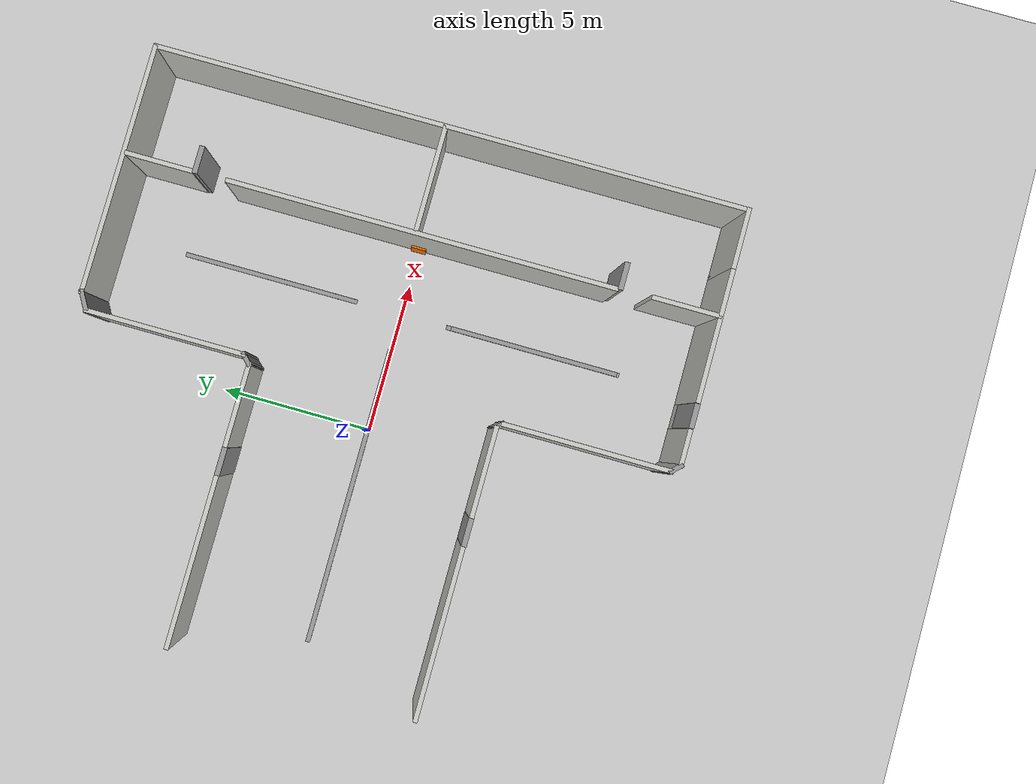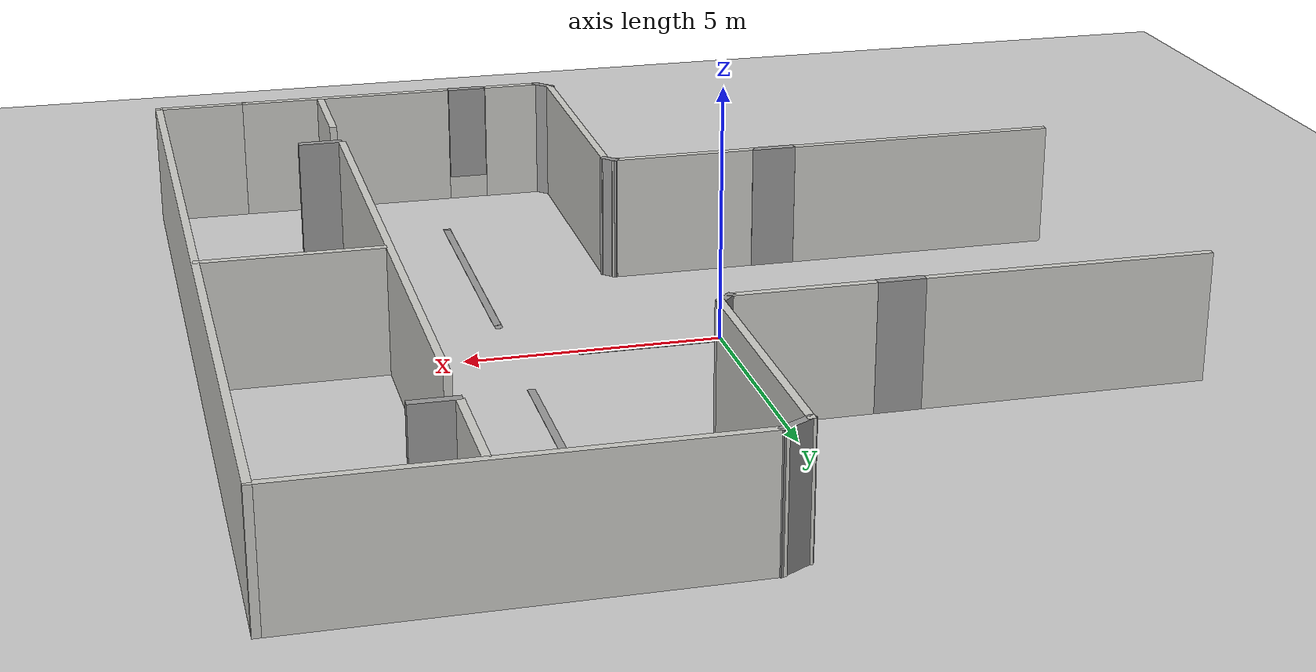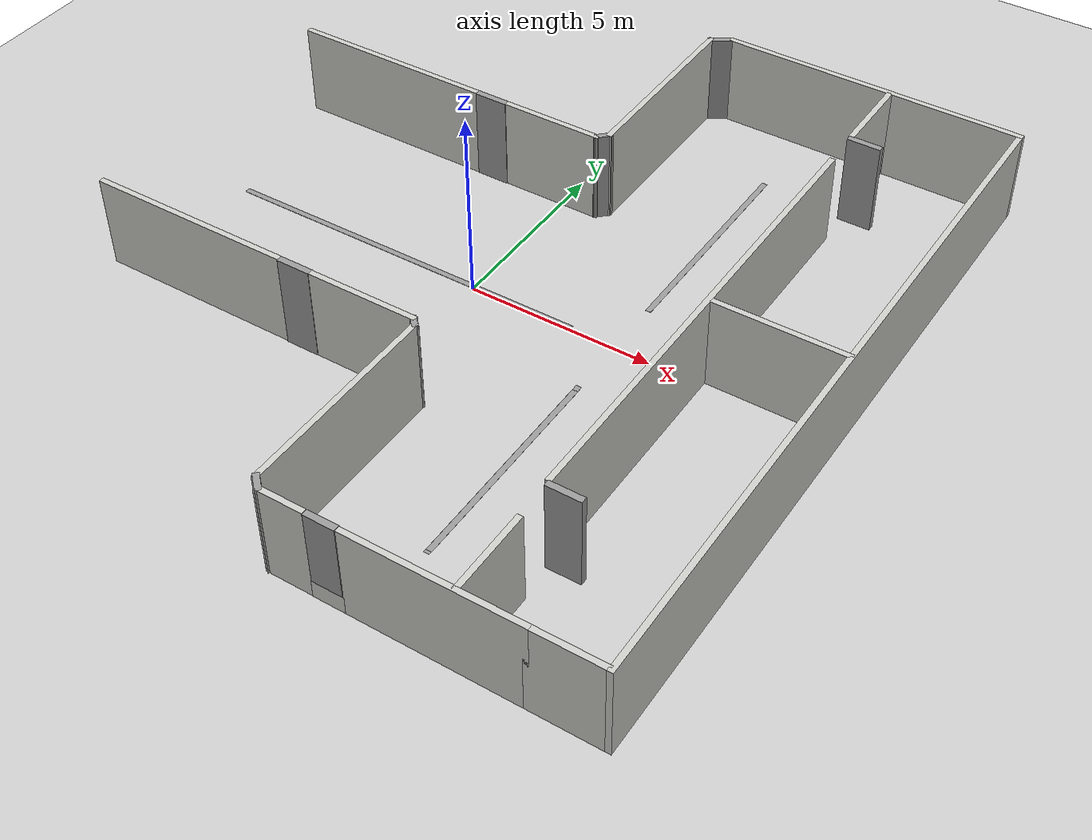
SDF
<sdf version="1.7">
 <world name="default">
  <light name="sun" type="directional">
   <pose>0 0 10 0 -0 0</pose>
   <diffuse>0.8 0.8 0.8 1</diffuse>
   <specular>0.2 0.2 0.2 1</specular>
   <attenuation>
    <range>1000</range>
    <constant>0.9</constant>
    <linear>0.01</linear>
    <quadratic>0.001</quadratic>
   </attenuation>
   <direction>-0.5 0.1 -0.9</direction>
   <spot><inner_angle>0</inner_angle><outer_angle>0</outer_angle><falloff>0</falloff></spot>
  </light>
  <model name="ground_plane">
   <static>1</static>
   <link name="link">
    <collision name="collision">
     <geometry><plane><normal>0 0 1</normal><size>100 100</size></plane></geometry>
     <surface><friction><ode><mu>100</mu><mu2>50</mu2></ode></friction></surface>
    </collision>
    <visual name="visual">
     <cast_shadows>0</cast_shadows>
     <geometry><plane><normal>0 0 1</normal><size>100 100</size></plane></geometry>
     <material>
      <script><uri>file://media/materials/scripts/gazebo.material</uri><name>Gazebo/Grey</name></script>
     </material>
    </visual>
   </link>
  </model>
  <gravity>0 0 -9.8</gravity>
  <magnetic_field>6e-06 2.3e-05 -4.2e-05</magnetic_field>
  <atmosphere type="adiabatic"/>
  <physics type="ode">
   <max_step_size>0.001</max_step_size>
   <real_time_factor>1</real_time_factor>
   <real_time_update_rate>1000</real_time_update_rate>
  </physics>
  <scene><ambient>0.4 0.4 0.4 1</ambient><background>0.7 0.7 0.7 1</background><shadows>1</shadows></scene>
  <spherical_coordinates>
   <surface_model>EARTH_WGS84</surface_model>
   <latitude_deg>0</latitude_deg>
   <longitude_deg>0</longitude_deg>
   <elevation>0</elevation>
   <heading_deg>0</heading_deg>
  </spherical_coordinates>
  <model name="hosp.world">
   <pose>0.907925 0.036457 0 0 -0 0</pose>
   <link name="Door_0">
    <collision name="Door_0_Collision">
     <geometry><box><size>0.9 0.17 2.5</size></box></geometry>
     <pose>0 0 1.25 0 -0 0</pose>
    </collision>
    <visual name="Door_0_Visual">
     <pose>0 0 1.25 0 -0 0</pose>
     <geometry><box><size>0.9 0.17 2.5</size></box></geometry>
     <material>
      <script><uri>file://media/materials/scripts/gazebo.material</uri><name>Gazebo/Grey</name></script>
     </material>
    </visual>
    <pose>-3.0738 -3.88285 0 0 -0 0</pose>
   </link>
   <link name="Door_1">
    <collision name="Door_1_Collision">
     <geometry><box><size>0.9 0.17 2.5</size></box></geometry>
     <pose>0 0 1.25 0 -0 0</pose>
    </collision>
    <visual name="Door_1_Visual">
     <pose>0 0 1.25 0 -0 0</pose>
     <geometry><box><size>0.9 0.17 2.5</size></box></geometry>
     <material>
      <script><uri>file://media/materials/scripts/gazebo.material</uri><name>Gazebo/Grey</name></script>
     </material>
    </visual>
    <pose>-3.03527 4.01633 0 0 -0 0</pose>
   </link>
   <link name="Door_2">
    <collision name="Door_2_Collision">
     <geometry><box><size>0.9 0.17 2.5</size></box></geometry>
     <pose>0 0 1.25 0 -0 0</pose>
    </collision>
    <visual name="Door_2_Visual">
     <pose>0 0 1.25 0 -0 0</pose>
     <geometry><box><size>0.9 0.17 2.5</size></box></geometry>
     <material>
      <script><uri>file://media/materials/scripts/gazebo.material</uri><name>Gazebo/Grey</name></script>
     </material>
    </visual>
    <pose>5.88274 -6.45803 0 0 -0 0</pose>
   </link>
   <link name="Door_3">
    <collision name="Door_3_Collision">
     <geometry><box><size>0.9 0.17 2.5</size></box></geometry>
     <pose>0 0 1.25 0 -0 0</pose>
    </collision>
    <visual name="Door_3_Visual">
     <pose>0 0 1.25 0 -0 0</pose>
     <geometry><box><size>0.9 0.17 2.5</size></box></geometry>
     <material>
      <script><uri>file://media/materials/scripts/gazebo.material</uri><name>Gazebo/Grey</name></script>
     </material>
    </visual>
    <pose>5.82192 7.34292 0 0 -0 0</pose>
   </link>
   <link name="Wall_0">
    <collision name="Wall_0_Collision">
     <geometry><box><size>5.5 0.15 2.5</size></box></geometry>
     <pose>0 0 1.25 0 -0 0</pose>
    </collision>
    <visual name="Wall_0_Visual">
     <pose>0 0 1.25 0 -0 0</pose>
     <geometry><box><size>5.5 0.15 2.5</size></box></geometry>
     <material>
      <script><uri>file://media/materials/scripts/gazebo.material</uri><name>Gazebo/CeilingTiled</name></script>
      <ambient>1 1 1 1</ambient>
     </material>
     <meta><layer>0</layer></meta>
    </visual>
    <pose>-6.27423 -3.87046 0 0 -0 0</pose>
   </link>
   <link name="Wall_11">
    <collision name="Wall_11_Collision">
     <geometry><box><size>5.5 0.15 2.5</size></box></geometry>
     <pose>0 0 1.25 0 -0 0</pose>
    </collision>
    <visual name="Wall_11_Visual">
     <pose>0 0 1.25 0 -0 0</pose>
     <geometry><box><size>5.5 0.15 2.5</size></box></geometry>
     <material>
      <script><uri>file://media/materials/scripts/gazebo.material</uri><name>Gazebo/CeilingTiled</name></script>
      <ambient>1 1 1 1</ambient>
     </material>
     <meta><layer>0</layer></meta>
    </visual>
    <pose>0.424387 -6.74646 0 0 -0 -1.5708</pose>
   </link>
   <link name="Wall_13">
    <collision name="Wall_13_Collision">
     <geometry><box><size>0.5 0.15 2.5</size></box></geometry>
     <pose>0 0 1.25 0 -0 0</pose>
    </collision>
    <visual name="Wall_13_Visual">
     <pose>0 0 1.25 0 -0 0</pose>
     <geometry><box><size>0.5 0.15 2.5</size></box></geometry>
     <material>
      <script><uri>file://media/materials/scripts/gazebo.material</uri><name>Gazebo/Grey</name></script>
      <ambient>1 1 1 1</ambient>
     </material>
     <meta><layer>0</layer></meta>
    </visual>
    <pose>0.548131 -9.54521 0 0 -0 -0.785398</pose>
   </link>
   <link name="Wall_14">
    <collision name="Wall_14_Collision">
     <geometry><box><size>1.25 0.15 2.5</size></box></geometry>
     <pose>0 0 1.25 0 -0 0</pose>
    </collision>
    <visual name="Wall_14_Visual">
     <pose>0 0 1.25 0 -0 0</pose>
     <geometry><box><size>1.25 0.15 2.5</size></box></geometry>
     <material>
      <script><uri>file://media/materials/scripts/gazebo.material</uri><name>Gazebo/CeilingTiled</name></script>
      <ambient>1 1 1 1</ambient>
     </material>
     <meta><layer>0</layer></meta>
    </visual>
    <pose>1.22188 -9.66895 0 0 -0 0</pose>
   </link>
   <link name="Wall_17">
    <collision name="Wall_17_Collision">
     <geometry><box><size>4.5 0.15 2.5</size></box></geometry>
     <pose>0 0 1.25 0 -0 0</pose>
    </collision>
    <visual name="Wall_17_Visual">
     <pose>0 0 1.25 0 -0 0</pose>
     <geometry><box><size>4.5 0.15 2.5</size></box></geometry>
     <material>
      <script><uri>file://media/materials/scripts/gazebo.material</uri><name>Gazebo/CeilingTiled</name></script>
      <ambient>1 1 1 1</ambient>
     </material>
     <meta><layer>0</layer></meta>
    </visual>
    <pose>4.92423 -9.67743 0 0 -0 0</pose>
   </link>
   <link name="Wall_18">
    <collision name="Wall_18_Collision">
     <geometry><box><size>2 0.15 2.5</size></box></geometry>
     <pose>0 0 1.25 0 -0 0</pose>
    </collision>
    <visual name="Wall_18_Visual">
     <pose>0 0 1.25 0 -0 0</pose>
     <geometry><box><size>2 0.15 2.5</size></box></geometry>
     <material>
      <script><uri>file://media/materials/scripts/gazebo.material</uri><name>Gazebo/CeilingTiled</name></script>
      <ambient>1 1 1 1</ambient>
     </material>
     <meta><layer>0</layer></meta>
    </visual>
    <pose>8.02423 -9.67743 0 0 -0 0</pose>
   </link>
   <link name="Wall_19">
    <collision name="Wall_19_Collision">
     <geometry><box><size>19.5 0.15 2.5</size></box></geometry>
     <pose>0 0 1.25 0 -0 0</pose>
    </collision>
    <visual name="Wall_19_Visual">
     <pose>0 0 1.25 0 -0 0</pose>
     <geometry><box><size>19.5 0.15 2.5</size></box></geometry>
     <material>
      <script><uri>file://media/materials/scripts/gazebo.material</uri><name>Gazebo/CeilingTiled</name></script>
      <ambient>1 1 1 1</ambient>
     </material>
     <meta><layer>0</layer></meta>
    </visual>
    <pose>8.94923 -0.002434 0 0 -0 1.5708</pose>
   </link>
   <link name="Wall_20">
    <collision name="Wall_20_Collision">
     <geometry><box><size>8.25 0.15 2.5</size></box></geometry>
     <pose>0 0 1.25 0 -0 0</pose>
    </collision>
    <visual name="Wall_20_Visual">
     <pose>0 0 1.25 0 -0 0</pose>
     <geometry><box><size>8.25 0.15 2.5</size></box></geometry>
     <material>
      <script><uri>file://media/materials/scripts/gazebo.material</uri><name>Gazebo/CeilingTiled</name></script>
      <ambient>1 1 1 1</ambient>
     </material>
     <meta><layer>0</layer></meta>
    </visual>
    <pose>4.89923 9.67257 0 0 -0 3.14159</pose>
   </link>
   <link name="Wall_21">
    <collision name="Wall_21_Collision">
     <geometry><box><size>0.75 0.15 2.5</size></box></geometry>
     <pose>0 0 1.25 0 -0 0</pose>
    </collision>
    <visual name="Wall_21_Visual">
     <pose>0 0 1.25 0 -0 0</pose>
     <geometry><box><size>0.75 0.15 2.5</size></box></geometry>
     <material>
      <script><uri>file://media/materials/scripts/gazebo.material</uri><name>Gazebo/Grey</name></script>
      <ambient>1 1 1 1</ambient>
     </material>
     <meta><layer>0</layer></meta>
    </visual>
    <pose>0.589423 9.52257 0 0 -0 -2.61799</pose>
   </link>
   <link name="Wall_22">
    <collision name="Wall_22_Collision">
     <geometry><box><size>5.25 0.15 2.5</size></box></geometry>
     <pose>0 0 1.25 0 -0 0</pose>
    </collision>
    <visual name="Wall_22_Visual">
     <pose>0 0 1.25 0 -0 0</pose>
     <geometry><box><size>5.25 0.15 2.5</size></box></geometry>
     <material>
      <script><uri>file://media/materials/scripts/gazebo.material</uri><name>Gazebo/CeilingTiled</name></script>
      <ambient>1 1 1 1</ambient>
     </material>
     <meta><layer>0</layer></meta>
    </visual>
    <pose>0.329615 6.82257 0 0 -0 -1.5708</pose>
   </link>
   <link name="Wall_23">
    <collision name="Wall_23_Collision">
     <geometry><box><size>0.5 0.15 2.5</size></box></geometry>
     <pose>0 0 1.25 0 -0 0</pose>
    </collision>
    <visual name="Wall_23_Visual">
     <pose>0 0 1.25 0 -0 0</pose>
     <geometry><box><size>0.5 0.15 2.5</size></box></geometry>
     <material>
      <script><uri>file://media/materials/scripts/gazebo.material</uri><name>Gazebo/Grey</name></script>
      <ambient>1 1 1 1</ambient>
     </material>
     <meta><layer>0</layer></meta>
    </visual>
    <pose>0.205871 4.14882 0 0 -0 -2.35619</pose>
   </link>
   <link name="Wall_24">
    <collision name="Wall_24_Collision">
     <geometry><box><size>2.75 0.15 2.5</size></box></geometry>
     <pose>0 0 1.25 0 -0 0</pose>
    </collision>
    <visual name="Wall_24_Visual">
     <pose>0 0 1.25 0 -0 0</pose>
     <geometry><box><size>2.75 0.15 2.5</size></box></geometry>
     <material>
      <script><uri>file://media/materials/scripts/gazebo.material</uri><name>Gazebo/CeilingTiled</name></script>
      <ambient>1 1 1 1</ambient>
     </material>
     <meta><layer>0</layer></meta>
    </visual>
    <pose>-1.21787 4.02508 0 0 -0 3.14159</pose>
   </link>
   <link name="Wall_26">
    <collision name="Wall_26_Collision">
     <geometry><box><size>5.5 0.15 2.5</size></box></geometry>
     <pose>0 0 1.25 0 -0 0</pose>
    </collision>
    <visual name="Wall_26_Visual">
     <pose>0 0 1.25 0 -0 0</pose>
     <geometry><box><size>5.5 0.15 2.5</size></box></geometry>
     <material>
      <script><uri>file://media/materials/scripts/gazebo.material</uri><name>Gazebo/CeilingTiled</name></script>
      <ambient>1 1 1 1</ambient>
     </material>
     <meta><layer>0</layer></meta>
    </visual>
    <pose>-6.22445 4.02389 0 0 -0 3.14159</pose>
   </link>
   <link name="Wall_3">
    <collision name="Wall_3_Collision">
     <geometry><box><size>3 0.15 2.5</size></box></geometry>
     <pose>0 0 1.25 0 -0 0</pose>
    </collision>
    <visual name="Wall_3_Visual">
     <pose>0 0 1.25 0 -0 0</pose>
     <geometry><box><size>3 0.15 2.5</size></box></geometry>
     <material>
      <script><uri>file://media/materials/scripts/gazebo.material</uri><name>Gazebo/CeilingTiled</name></script>
      <ambient>1 1 1 1</ambient>
     </material>
     <meta><layer>0</layer></meta>
    </visual>
    <pose>-1.16881 -3.88285 0 0 -0 0</pose>
   </link>
   <link name="Wall_32">
    <collision name="Wall_32_Collision">
     <geometry><box><size>2.25 0.15 2.5</size></box></geometry>
     <pose>0 0 1.25 0 -0 0</pose>
    </collision>
    <visual name="Wall_32_Visual">
     <pose>0 0 1.25 0 -0 0</pose>
     <geometry><box><size>2.25 0.15 2.5</size></box></geometry>
     <material>
      <script><uri>file://media/materials/scripts/gazebo.material</uri><name>Gazebo/CeilingTiled</name></script>
      <ambient>1 1 1 1</ambient>
     </material>
     <meta><layer>0</layer></meta>
    </visual>
    <pose>5.48275 -8.58787 0 0 -0 1.5708</pose>
   </link>
   <link name="Wall_35">
    <collision name="Wall_35_Collision">
     <geometry><box><size>12.75 0.15 2.5</size></box></geometry>
     <pose>0 0 1.25 0 -0 0</pose>
    </collision>
    <visual name="Wall_35_Visual">
     <pose>0 0 1.25 0 -0 0</pose>
     <geometry><box><size>12.75 0.15 2.5</size></box></geometry>
     <material>
      <script><uri>file://media/materials/scripts/gazebo.material</uri><name>Gazebo/CeilingTiled</name></script>
      <ambient>1 1 1 1</ambient>
     </material>
     <meta><layer>0</layer></meta>
    </visual>
    <pose>5.43674 -0.028369 0 0 -0 1.5708</pose>
   </link>
   <link name="Wall_39">
    <collision name="Wall_39_Collision">
     <geometry><box><size>2.25 0.15 2.5</size></box></geometry>
     <pose>0 0 1.25 0 -0 0</pose>
    </collision>
    <visual name="Wall_39_Visual">
     <pose>0 0 1.25 0 -0 0</pose>
     <geometry><box><size>2.25 0.15 2.5</size></box></geometry>
     <material>
      <script><uri>file://media/materials/scripts/gazebo.material</uri><name>Gazebo/CeilingTiled</name></script>
      <ambient>1 1 1 1</ambient>
     </material>
     <meta><layer>0</layer></meta>
    </visual>
    <pose>5.42154 8.51583 0 0 -0 1.5708</pose>
   </link>
   <link name="Wall_42">
    <collision name="Wall_42_Collision">
     <geometry><box><size>3.5 0.15 2.5</size></box></geometry>
     <pose>0 0 1.25 0 -0 0</pose>
    </collision>
    <visual name="Wall_42_Visual">
     <pose>0 0 1.25 0 -0 0</pose>
     <geometry><box><size>3.5 0.15 2.5</size></box></geometry>
     <material>
      <script><uri>file://media/materials/scripts/gazebo.material</uri><name>Gazebo/CeilingTiled</name></script>
      <ambient>1 1 1 1</ambient>
     </material>
     <meta><layer>0</layer></meta>
    </visual>
    <pose>7.24281 0.164825 0 0 -0 0</pose>
   </link>
   <link name="Wall_46">
    <collision name="Wall_46_Collision">
     <geometry><box><size>0.85 0.15 0.5</size></box></geometry>
     <pose>0 0 0.25 0 -0 0</pose>
    </collision>
    <visual name="Wall_46_Visual">
     <pose>0 0 0.25 0 -0 0</pose>
     <geometry><box><size>0.85 0.15 0.5</size></box></geometry>
     <material>
      <script><uri>file://media/materials/scripts/gazebo.material</uri><name>Gazebo/CeilingTiled</name></script>
      <ambient>1 1 1 1</ambient>
     </material>
     <meta><layer>0</layer></meta>
    </visual>
    <pose>2.26378 -9.67758 0 0 -0 0</pose>
   </link>
   <link name="Wall_48">
    <collision name="Wall_48_Collision">
     <geometry><box><size>0.5 0.15 0.7</size></box></geometry>
     <pose>0 0 0.35 0 -0 0</pose>
    </collision>
    <visual name="Wall_48_Visual">
     <pose>0 0 0.35 0 -0 0</pose>
     <geometry><box><size>0.5 0.15 0.7</size></box></geometry>
     <material>
      <script><uri>file://media/materials/scripts/gazebo.material</uri><name>Gazebo/Grey</name></script>
      <ambient>0.996078 0.47451 0.0196078 1</ambient>
     </material>
     <meta><layer>0</layer></meta>
    </visual>
    <pose>5.36766 0.024862 0 0 -0 -1.5708</pose>
   </link>
   <link name="Wall_6">
    <collision name="Wall_6_Collision">
     <geometry><box><size>0.383536 0.15 2.5</size></box></geometry>
     <pose>0 0 1.25 0 -0 0</pose>
    </collision>
    <visual name="Wall_6_Visual">
     <pose>0 0 1.25 0 -0 0</pose>
     <geometry><box><size>0.383536 0.15 2.5</size></box></geometry>
     <material>
      <script><uri>file://media/materials/scripts/gazebo.material</uri><name>Gazebo/Grey</name></script>
      <ambient>1 1 1 1</ambient>
     </material>
     <meta><layer>0</layer></meta>
    </visual>
    <pose>0.340287 -3.96386 0 0 -0 -0.76666</pose>
   </link>
   <link name="Wall_71">
    <collision name="Wall_71_Collision">
     <geometry><box><size>10 0.15 0.001</size></box></geometry>
     <pose>0 0 0.0005 0 -0 0</pose>
    </collision>
    <visual name="Wall_71_Visual">
     <pose>0 0 0.0005 0 -0 0</pose>
     <geometry><box><size>10 0.15 0.001</size></box></geometry>
     <material>
      <script><uri>file://media/materials/scripts/gazebo.material</uri><name>Gazebo/Grey</name></script>
      <ambient>1 1 1 1</ambient>
     </material>
     <meta><layer>0</layer></meta>
    </visual>
    <pose>-3.09793 0.040543 0 0 -0 0</pose>
   </link>
   <link name="Wall_73">
    <collision name="Wall_73_Collision">
     <geometry><box><size>6 0.15 0.001</size></box></geometry>
     <pose>0 0 0.0005 0 -0 0</pose>
    </collision>
    <visual name="Wall_73_Visual">
     <pose>0 0 0.0005 0 -0 0</pose>
     <geometry><box><size>6 0.15 0.001</size></box></geometry>
     <material>
      <script><uri>file://media/materials/scripts/gazebo.material</uri><name>Gazebo/Grey</name></script>
      <ambient>1 1 1 1</ambient>
     </material>
     <meta><layer>0</layer></meta>
    </visual>
    <pose>3.12226 -4.56142 0 0 -0 1.5708</pose>
   </link>
   <link name="Wall_75">
    <collision name="Wall_75_Collision">
     <geometry><box><size>6 0.15 0.001</size></box></geometry>
     <pose>0 0 0.0005 0 -0 0</pose>
    </collision>
    <visual name="Wall_75_Visual">
     <pose>0 0 0.0005 0 -0 0</pose>
     <geometry><box><size>6 0.15 0.001</size></box></geometry>
     <material>
      <script><uri>file://media/materials/scripts/gazebo.material</uri><name>Gazebo/Grey</name></script>
      <ambient>1 1 1 1</ambient>
     </material>
     <meta><layer>0</layer></meta>
    </visual>
    <pose>3.13307 4.54354 0 0 -0 1.5708</pose>
   </link>
   <link name="Window_0">
    <collision name="Window_0_Collision">
     <geometry><box><size>0.8 0.17 2</size></box></geometry>
     <pose>0 0 1 0 -0 0</pose>
    </collision>
    <visual name="Window_0_Visual">
     <pose>0 0 1 0 -0 0</pose>
     <geometry><box><size>0.8 0.17 2</size></box></geometry>
     <material>
      <script><uri>file://media/materials/scripts/gazebo.material</uri><name>Gazebo/Grey</name></script>
     </material>
    </visual>
    <pose>2.26221 -9.67567 0.5 0 -0 0</pose>
   </link>
   <static>1</static>
  </model>
  <model name="hospital">
   <pose>-1.562 0.0685 0 0 -0 0</pose>
   <link name="Wall_77">
    <collision name="Wall_77_Collision">
     <geometry><box><size>10 0.15 0.005</size></box></geometry>
     <pose>0 0 0.0025 0 -0 0</pose>
    </collision>
    <visual name="Wall_77_Visual">
     <pose>0 0 0.0025 0 -0 0</pose>
     <geometry><box><size>10 0.15 0.005</size></box></geometry>
     <material>
      <script><uri>file://media/materials/scripts/gazebo.material</uri><name>Gazebo/Grey</name></script>
      <ambient>1 1 1 1</ambient>
     </material>
     <meta><layer>0</layer></meta>
    </visual>
    <pose>-0.677 0.0125 0 0 -0 0</pose>
   </link>
   <link name="Wall_79">
    <collision name="Wall_79_Collision">
     <geometry><box><size>5.75 0.15 0.005</size></box></geometry>
     <pose>0 0 0.0025 0 -0 0</pose>
    </collision>
    <visual name="Wall_79_Visual">
     <pose>0 0 0.0025 0 -0 0</pose>
     <geometry><box><size>5.75 0.15 0.005</size></box></geometry>
     <material>
      <script><uri>file://media/materials/scripts/gazebo.material</uri><name>Gazebo/Grey</name></script>
      <ambient>1 1 1 1</ambient>
     </material>
     <meta><layer>0</layer></meta>
    </visual>
    <pose>5.598 -4.6385 0 0 -0 -1.5708</pose>
   </link>
   <link name="Wall_81">
    <collision name="Wall_81_Collision">
     <geometry><box><size>6 0.15 0.005</size></box></geometry>
     <pose>0 0 0.0025 0 -0 0</pose>
    </collision>
    <visual name="Wall_81_Visual">
     <pose>0 0 0.0025 0 -0 0</pose>
     <geometry><box><size>6 0.15 0.005</size></box></geometry>
     <material>
      <script><uri>file://media/materials/scripts/gazebo.material</uri><name>Gazebo/Grey</name></script>
      <ambient>1 1 1 1</ambient>
     </material>
     <meta><layer>0</layer></meta>
    </visual>
    <pose>5.602 4.5135 0 0 -0 1.5708</pose>
   </link>
   <static>1</static>
  </model>
 </world>
</sdf>
